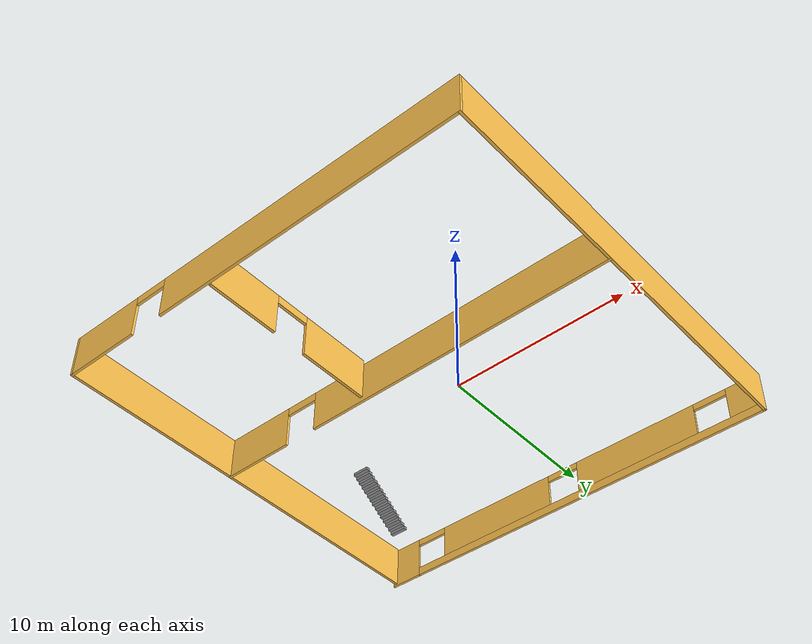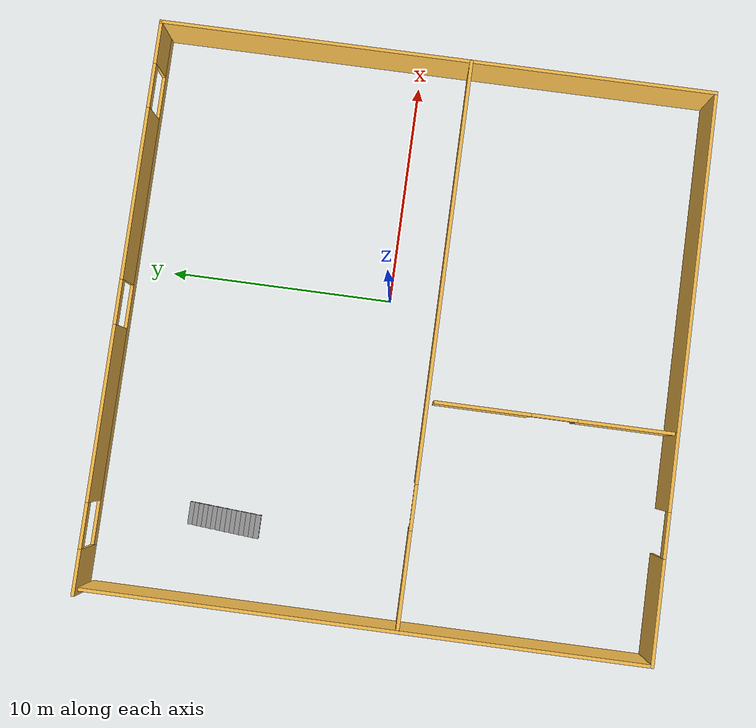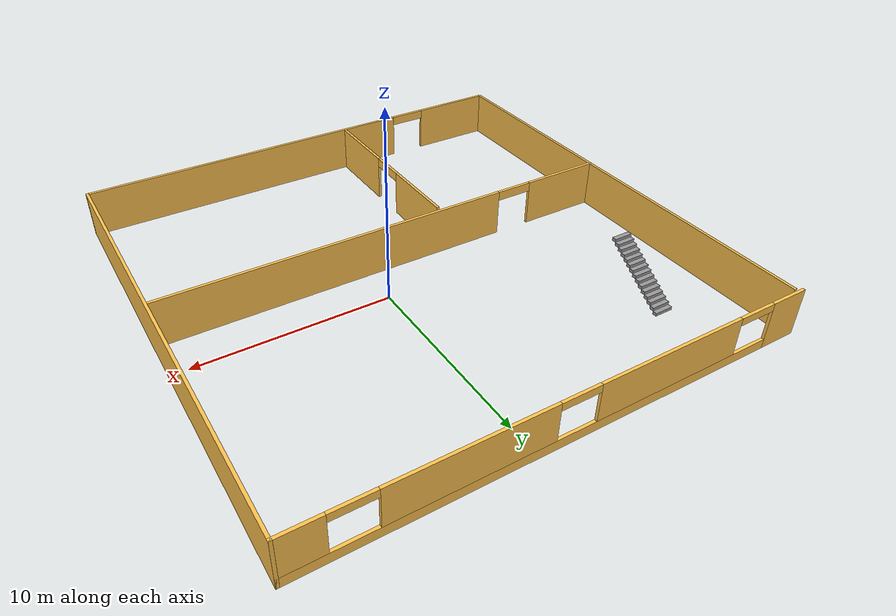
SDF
<?xml version='1.0'?>
<sdf version='1.6'>
  <model name='building'>
    <pose frame=''>-1.83631 -0.712175 0 0 -0 0</pose>
    <link name='Stairs_0'>
      <visual name='Stairs_0_Visual_0'>
        <pose frame=''>-8.80586 8.30072 0.083333 0 -0 0</pose>
        <geometry>
          <box>
            <size>1 0.233333 0.166667</size>
          </box>
        </geometry>
        <material>
          <script>
            <uri>file://media/materials/scripts/gazebo.material</uri>
            <name>Gazebo/Grey</name>
          </script>
          <ambient>1 1 1 1</ambient>
        </material>
        <meta>
          <layer>0</layer>
        </meta>
      </visual>
      <collision name='Stairs_0_Collision_0'>
        <geometry>
          <box>
            <size>1 0.233333 0.166667</size>
          </box>
        </geometry>
        <pose frame=''>-8.80586 8.30072 0.083333 0 -0 0</pose>
      </collision>
      <visual name='Stairs_0_Visual_1'>
        <pose frame=''>-8.80586 8.06739 0.25 0 -0 0</pose>
        <geometry>
          <box>
            <size>1 0.233333 0.166667</size>
          </box>
        </geometry>
        <material>
          <script>
            <uri>file://media/materials/scripts/gazebo.material</uri>
            <name>Gazebo/Grey</name>
          </script>
          <ambient>1 1 1 1</ambient>
        </material>
        <meta>
          <layer>0</layer>
        </meta>
      </visual>
      <collision name='Stairs_0_Collision_1'>
        <geometry>
          <box>
            <size>1 0.233333 0.166667</size>
          </box>
        </geometry>
        <pose frame=''>-8.80586 8.06739 0.25 0 -0 0</pose>
      </collision>
      <visual name='Stairs_0_Visual_2'>
        <pose frame=''>-8.80586 7.83406 0.416667 0 -0 0</pose>
        <geometry>
          <box>
            <size>1 0.233333 0.166667</size>
          </box>
        </geometry>
        <material>
          <script>
            <uri>file://media/materials/scripts/gazebo.material</uri>
            <name>Gazebo/Grey</name>
          </script>
          <ambient>1 1 1 1</ambient>
        </material>
        <meta>
          <layer>0</layer>
        </meta>
      </visual>
      <collision name='Stairs_0_Collision_2'>
        <geometry>
          <box>
            <size>1 0.233333 0.166667</size>
          </box>
        </geometry>
        <pose frame=''>-8.80586 7.83406 0.416667 0 -0 0</pose>
      </collision>
      <visual name='Stairs_0_Visual_3'>
        <pose frame=''>-8.80586 7.60072 0.583333 0 -0 0</pose>
        <geometry>
          <box>
            <size>1 0.233333 0.166667</size>
          </box>
        </geometry>
        <material>
          <script>
            <uri>file://media/materials/scripts/gazebo.material</uri>
            <name>Gazebo/Grey</name>
          </script>
          <ambient>1 1 1 1</ambient>
        </material>
        <meta>
          <layer>0</layer>
        </meta>
      </visual>
      <collision name='Stairs_0_Collision_3'>
        <geometry>
          <box>
            <size>1 0.233333 0.166667</size>
          </box>
        </geometry>
        <pose frame=''>-8.80586 7.60072 0.583333 0 -0 0</pose>
      </collision>
      <visual name='Stairs_0_Visual_4'>
        <pose frame=''>-8.80586 7.36739 0.75 0 -0 0</pose>
        <geometry>
          <box>
            <size>1 0.233333 0.166667</size>
          </box>
        </geometry>
        <material>
          <script>
            <uri>file://media/materials/scripts/gazebo.material</uri>
            <name>Gazebo/Grey</name>
          </script>
          <ambient>1 1 1 1</ambient>
        </material>
        <meta>
          <layer>0</layer>
        </meta>
      </visual>
      <collision name='Stairs_0_Collision_4'>
        <geometry>
          <box>
            <size>1 0.233333 0.166667</size>
          </box>
        </geometry>
        <pose frame=''>-8.80586 7.36739 0.75 0 -0 0</pose>
      </collision>
      <visual name='Stairs_0_Visual_5'>
        <pose frame=''>-8.80586 7.13406 0.916667 0 -0 0</pose>
        <geometry>
          <box>
            <size>1 0.233333 0.166667</size>
          </box>
        </geometry>
        <material>
          <script>
            <uri>file://media/materials/scripts/gazebo.material</uri>
            <name>Gazebo/Grey</name>
          </script>
          <ambient>1 1 1 1</ambient>
        </material>
        <meta>
          <layer>0</layer>
        </meta>
      </visual>
      <collision name='Stairs_0_Collision_5'>
        <geometry>
          <box>
            <size>1 0.233333 0.166667</size>
          </box>
        </geometry>
        <pose frame=''>-8.80586 7.13406 0.916667 0 -0 0</pose>
      </collision>
      <visual name='Stairs_0_Visual_6'>
        <pose frame=''>-8.80586 6.90072 1.08333 0 -0 0</pose>
        <geometry>
          <box>
            <size>1 0.233333 0.166667</size>
          </box>
        </geometry>
        <material>
          <script>
            <uri>file://media/materials/scripts/gazebo.material</uri>
            <name>Gazebo/Grey</name>
          </script>
          <ambient>1 1 1 1</ambient>
        </material>
        <meta>
          <layer>0</layer>
        </meta>
      </visual>
      <collision name='Stairs_0_Collision_6'>
        <geometry>
          <box>
            <size>1 0.233333 0.166667</size>
          </box>
        </geometry>
        <pose frame=''>-8.80586 6.90072 1.08333 0 -0 0</pose>
      </collision>
      <visual name='Stairs_0_Visual_7'>
        <pose frame=''>-8.80586 6.66739 1.25 0 -0 0</pose>
        <geometry>
          <box>
            <size>1 0.233333 0.166667</size>
          </box>
        </geometry>
        <material>
          <script>
            <uri>file://media/materials/scripts/gazebo.material</uri>
            <name>Gazebo/Grey</name>
          </script>
          <ambient>1 1 1 1</ambient>
        </material>
        <meta>
          <layer>0</layer>
        </meta>
      </visual>
      <collision name='Stairs_0_Collision_7'>
        <geometry>
          <box>
            <size>1 0.233333 0.166667</size>
          </box>
        </geometry>
        <pose frame=''>-8.80586 6.66739 1.25 0 -0 0</pose>
      </collision>
      <visual name='Stairs_0_Visual_8'>
        <pose frame=''>-8.80586 6.43406 1.41667 0 -0 0</pose>
        <geometry>
          <box>
            <size>1 0.233333 0.166667</size>
          </box>
        </geometry>
        <material>
          <script>
            <uri>file://media/materials/scripts/gazebo.material</uri>
            <name>Gazebo/Grey</name>
          </script>
          <ambient>1 1 1 1</ambient>
        </material>
        <meta>
          <layer>0</layer>
        </meta>
      </visual>
      <collision name='Stairs_0_Collision_8'>
        <geometry>
          <box>
            <size>1 0.233333 0.166667</size>
          </box>
        </geometry>
        <pose frame=''>-8.80586 6.43406 1.41667 0 -0 0</pose>
      </collision>
      <visual name='Stairs_0_Visual_9'>
        <pose frame=''>-8.80586 6.20072 1.58333 0 -0 0</pose>
        <geometry>
          <box>
            <size>1 0.233333 0.166667</size>
          </box>
        </geometry>
        <material>
          <script>
            <uri>file://media/materials/scripts/gazebo.material</uri>
            <name>Gazebo/Grey</name>
          </script>
          <ambient>1 1 1 1</ambient>
        </material>
        <meta>
          <layer>0</layer>
        </meta>
      </visual>
      <collision name='Stairs_0_Collision_9'>
        <geometry>
          <box>
            <size>1 0.233333 0.166667</size>
          </box>
        </geometry>
        <pose frame=''>-8.80586 6.20072 1.58333 0 -0 0</pose>
      </collision>
      <visual name='Stairs_0_Visual_10'>
        <pose frame=''>-8.80586 5.96739 1.75 0 -0 0</pose>
        <geometry>
          <box>
            <size>1 0.233333 0.166667</size>
          </box>
        </geometry>
        <material>
          <script>
            <uri>file://media/materials/scripts/gazebo.material</uri>
            <name>Gazebo/Grey</name>
          </script>
          <ambient>1 1 1 1</ambient>
        </material>
        <meta>
          <layer>0</layer>
        </meta>
      </visual>
      <collision name='Stairs_0_Collision_10'>
        <geometry>
          <box>
            <size>1 0.233333 0.166667</size>
          </box>
        </geometry>
        <pose frame=''>-8.80586 5.96739 1.75 0 -0 0</pose>
      </collision>
      <visual name='Stairs_0_Visual_11'>
        <pose frame=''>-8.80586 5.73406 1.91667 0 -0 0</pose>
        <geometry>
          <box>
            <size>1 0.233333 0.166667</size>
          </box>
        </geometry>
        <material>
          <script>
            <uri>file://media/materials/scripts/gazebo.material</uri>
            <name>Gazebo/Grey</name>
          </script>
          <ambient>1 1 1 1</ambient>
        </material>
        <meta>
          <layer>0</layer>
        </meta>
      </visual>
      <collision name='Stairs_0_Collision_11'>
        <geometry>
          <box>
            <size>1 0.233333 0.166667</size>
          </box>
        </geometry>
        <pose frame=''>-8.80586 5.73406 1.91667 0 -0 0</pose>
      </collision>
      <visual name='Stairs_0_Visual_12'>
        <pose frame=''>-8.80586 5.50072 2.08333 0 -0 0</pose>
        <geometry>
          <box>
            <size>1 0.233333 0.166667</size>
          </box>
        </geometry>
        <material>
          <script>
            <uri>file://media/materials/scripts/gazebo.material</uri>
            <name>Gazebo/Grey</name>
          </script>
          <ambient>1 1 1 1</ambient>
        </material>
        <meta>
          <layer>0</layer>
        </meta>
      </visual>
      <collision name='Stairs_0_Collision_12'>
        <geometry>
          <box>
            <size>1 0.233333 0.166667</size>
          </box>
        </geometry>
        <pose frame=''>-8.80586 5.50072 2.08333 0 -0 0</pose>
      </collision>
      <visual name='Stairs_0_Visual_13'>
        <pose frame=''>-8.80586 5.26739 2.25 0 -0 0</pose>
        <geometry>
          <box>
            <size>1 0.233333 0.166667</size>
          </box>
        </geometry>
        <material>
          <script>
            <uri>file://media/materials/scripts/gazebo.material</uri>
            <name>Gazebo/Grey</name>
          </script>
          <ambient>1 1 1 1</ambient>
        </material>
        <meta>
          <layer>0</layer>
        </meta>
      </visual>
      <collision name='Stairs_0_Collision_13'>
        <geometry>
          <box>
            <size>1 0.233333 0.166667</size>
          </box>
        </geometry>
        <pose frame=''>-8.80586 5.26739 2.25 0 -0 0</pose>
      </collision>
      <visual name='Stairs_0_Visual_14'>
        <pose frame=''>-8.80586 5.03406 2.41667 0 -0 0</pose>
        <geometry>
          <box>
            <size>1 0.233333 0.166667</size>
          </box>
        </geometry>
        <material>
          <script>
            <uri>file://media/materials/scripts/gazebo.material</uri>
            <name>Gazebo/Grey</name>
          </script>
          <ambient>1 1 1 1</ambient>
        </material>
        <meta>
          <layer>0</layer>
        </meta>
      </visual>
      <collision name='Stairs_0_Collision_14'>
        <geometry>
          <box>
            <size>1 0.233333 0.166667</size>
          </box>
        </geometry>
        <pose frame=''>-8.80586 5.03406 2.41667 0 -0 0</pose>
      </collision>
    </link>
    <link name='Wall_0'>
      <pose frame=''>-1e-06 12.425 0 0 -0 0</pose>
      <visual name='Wall_0_Visual_0'>
        <pose frame=''>-11.7466 0 1.25 0 -0 0</pose>
        <geometry>
          <box>
            <size>2.0068 0.15 2.5</size>
          </box>
        </geometry>
        <material>
          <script>
            <uri>file://media/materials/scripts/gazebo.material</uri>
            <name>Gazebo/Grey</name>
          </script>
          <ambient>1 0.764706 0.305882 1</ambient>
        </material>
        <meta>
          <layer>0</layer>
        </meta>
      </visual>
      <collision name='Wall_0_Collision_0'>
        <geometry>
          <box>
            <size>2.0068 0.15 2.5</size>
          </box>
        </geometry>
        <pose frame=''>-11.7466 0 1.25 0 -0 0</pose>
      </collision>
      <visual name='Wall_0_Visual_1'>
        <pose frame=''>1.0034 0 0.25 0 -0 0</pose>
        <geometry>
          <box>
            <size>23.4932 0.15 0.5</size>
          </box>
        </geometry>
        <material>
          <script>
            <uri>file://media/materials/scripts/gazebo.material</uri>
            <name>Gazebo/Grey</name>
          </script>
          <ambient>1 0.764706 0.305882 1</ambient>
        </material>
        <meta>
          <layer>0</layer>
        </meta>
      </visual>
      <collision name='Wall_0_Collision_1'>
        <geometry>
          <box>
            <size>23.4932 0.15 0.5</size>
          </box>
        </geometry>
        <pose frame=''>1.0034 0 0.25 0 -0 0</pose>
      </collision>
      <visual name='Wall_0_Visual_2'>
        <pose frame=''>-4.86655 0 1.5 0 -0 0</pose>
        <geometry>
          <box>
            <size>7.75331 0.15 2</size>
          </box>
        </geometry>
        <material>
          <script>
            <uri>file://media/materials/scripts/gazebo.material</uri>
            <name>Gazebo/Grey</name>
          </script>
          <ambient>1 0.764706 0.305882 1</ambient>
        </material>
        <meta>
          <layer>0</layer>
        </meta>
      </visual>
      <collision name='Wall_0_Collision_2'>
        <geometry>
          <box>
            <size>7.75331 0.15 2</size>
          </box>
        </geometry>
        <pose frame=''>-4.86655 0 1.5 0 -0 0</pose>
      </collision>
      <visual name='Wall_0_Visual_3'>
        <pose frame=''>4.87812 0 1.5 0 -0 0</pose>
        <geometry>
          <box>
            <size>7.73602 0.15 2</size>
          </box>
        </geometry>
        <material>
          <script>
            <uri>file://media/materials/scripts/gazebo.material</uri>
            <name>Gazebo/Grey</name>
          </script>
          <ambient>1 0.764706 0.305882 1</ambient>
        </material>
        <meta>
          <layer>0</layer>
        </meta>
      </visual>
      <collision name='Wall_0_Collision_3'>
        <geometry>
          <box>
            <size>7.73602 0.15 2</size>
          </box>
        </geometry>
        <pose frame=''>4.87812 0 1.5 0 -0 0</pose>
      </collision>
      <visual name='Wall_0_Visual_4'>
        <pose frame=''>11.7481 0 1.5 0 -0 0</pose>
        <geometry>
          <box>
            <size>2.00387 0.15 2</size>
          </box>
        </geometry>
        <material>
          <script>
            <uri>file://media/materials/scripts/gazebo.material</uri>
            <name>Gazebo/Grey</name>
          </script>
          <ambient>1 0.764706 0.305882 1</ambient>
        </material>
        <meta>
          <layer>0</layer>
        </meta>
      </visual>
      <collision name='Wall_0_Collision_4'>
        <geometry>
          <box>
            <size>2.00387 0.15 2</size>
          </box>
        </geometry>
        <pose frame=''>11.7481 0 1.5 0 -0 0</pose>
      </collision>
      <visual name='Wall_0_Visual_5'>
        <pose frame=''>-9.7432 0 2.3 0 -0 0</pose>
        <geometry>
          <box>
            <size>2 0.15 0.4</size>
          </box>
        </geometry>
        <material>
          <script>
            <uri>file://media/materials/scripts/gazebo.material</uri>
            <name>Gazebo/Grey</name>
          </script>
          <ambient>1 0.764706 0.305882 1</ambient>
        </material>
        <meta>
          <layer>0</layer>
        </meta>
      </visual>
      <collision name='Wall_0_Collision_5'>
        <geometry>
          <box>
            <size>2 0.15 0.4</size>
          </box>
        </geometry>
        <pose frame=''>-9.7432 0 2.3 0 -0 0</pose>
      </collision>
      <visual name='Wall_0_Visual_6'>
        <pose frame=''>0.01011 0 2.3 0 -0 0</pose>
        <geometry>
          <box>
            <size>2 0.15 0.4</size>
          </box>
        </geometry>
        <material>
          <script>
            <uri>file://media/materials/scripts/gazebo.material</uri>
            <name>Gazebo/Grey</name>
          </script>
          <ambient>1 0.764706 0.305882 1</ambient>
        </material>
        <meta>
          <layer>0</layer>
        </meta>
      </visual>
      <collision name='Wall_0_Collision_6'>
        <geometry>
          <box>
            <size>2 0.15 0.4</size>
          </box>
        </geometry>
        <pose frame=''>0.01011 0 2.3 0 -0 0</pose>
      </collision>
      <visual name='Wall_0_Visual_7'>
        <pose frame=''>9.74613 0 2.3 0 -0 0</pose>
        <geometry>
          <box>
            <size>2 0.15 0.4</size>
          </box>
        </geometry>
        <material>
          <script>
            <uri>file://media/materials/scripts/gazebo.material</uri>
            <name>Gazebo/Grey</name>
          </script>
          <ambient>1 0.764706 0.305882 1</ambient>
        </material>
        <meta>
          <layer>0</layer>
        </meta>
      </visual>
      <collision name='Wall_0_Collision_7'>
        <geometry>
          <box>
            <size>2 0.15 0.4</size>
          </box>
        </geometry>
        <pose frame=''>9.74613 0 2.3 0 -0 0</pose>
      </collision>
    </link>
    <link name='Wall_1'>
      <collision name='Wall_1_Collision'>
        <geometry>
          <box>
            <size>25 0.15 2.5</size>
          </box>
        </geometry>
        <pose frame=''>0 0 1.25 0 -0 0</pose>
      </collision>
      <visual name='Wall_1_Visual'>
        <pose frame=''>0 0 1.25 0 -0 0</pose>
        <geometry>
          <box>
            <size>25 0.15 2.5</size>
          </box>
        </geometry>
        <material>
          <script>
            <uri>file://media/materials/scripts/gazebo.material</uri>
            <name>Gazebo/Grey</name>
          </script>
          <ambient>1 0.764706 0.305882 1</ambient>
        </material>
        <meta>
          <layer>0</layer>
        </meta>
      </visual>
      <pose frame=''>12.675 0 0 0 0 -1.5708</pose>
    </link>
    <link name='Wall_2'>
      <pose frame=''>0.124999 -12.425 0 0 -0 3.14159</pose>
      <visual name='Wall_2_Visual_0'>
        <pose frame=''>-3.3109 0 1.25 0 -0 0</pose>
        <geometry>
          <box>
            <size>18.6282 0.15 2.5</size>
          </box>
        </geometry>
        <material>
          <script>
            <uri>file://media/materials/scripts/gazebo.material</uri>
            <name>Gazebo/Grey</name>
          </script>
          <ambient>1 0.764706 0.305882 1</ambient>
        </material>
        <meta>
          <layer>0</layer>
        </meta>
      </visual>
      <collision name='Wall_2_Collision_0'>
        <geometry>
          <box>
            <size>18.6282 0.15 2.5</size>
          </box>
        </geometry>
        <pose frame=''>-3.3109 0 1.25 0 -0 0</pose>
      </collision>
      <visual name='Wall_2_Visual_1'>
        <pose frame=''>10.3141 0 1.25 0 -0 0</pose>
        <geometry>
          <box>
            <size>4.62181 0.15 2.5</size>
          </box>
        </geometry>
        <material>
          <script>
            <uri>file://media/materials/scripts/gazebo.material</uri>
            <name>Gazebo/Grey</name>
          </script>
          <ambient>1 0.764706 0.305882 1</ambient>
        </material>
        <meta>
          <layer>0</layer>
        </meta>
      </visual>
      <collision name='Wall_2_Collision_1'>
        <geometry>
          <box>
            <size>4.62181 0.15 2.5</size>
          </box>
        </geometry>
        <pose frame=''>10.3141 0 1.25 0 -0 0</pose>
      </collision>
      <visual name='Wall_2_Visual_2'>
        <pose frame=''>7.00319 0 2.25 0 -0 0</pose>
        <geometry>
          <box>
            <size>2 0.15 0.5</size>
          </box>
        </geometry>
        <material>
          <script>
            <uri>file://media/materials/scripts/gazebo.material</uri>
            <name>Gazebo/Grey</name>
          </script>
          <ambient>1 0.764706 0.305882 1</ambient>
        </material>
        <meta>
          <layer>0</layer>
        </meta>
      </visual>
      <collision name='Wall_2_Collision_2'>
        <geometry>
          <box>
            <size>2 0.15 0.5</size>
          </box>
        </geometry>
        <pose frame=''>7.00319 0 2.25 0 -0 0</pose>
      </collision>
    </link>
    <link name='Wall_3'>
      <collision name='Wall_3_Collision'>
        <geometry>
          <box>
            <size>24.75 0.15 2.5</size>
          </box>
        </geometry>
        <pose frame=''>0 0 1.25 0 -0 0</pose>
      </collision>
      <visual name='Wall_3_Visual'>
        <pose frame=''>0 0 1.25 0 -0 0</pose>
        <geometry>
          <box>
            <size>24.75 0.15 2.5</size>
          </box>
        </geometry>
        <material>
          <script>
            <uri>file://media/materials/scripts/gazebo.material</uri>
            <name>Gazebo/Grey</name>
          </script>
          <ambient>1 0.764706 0.305882 1</ambient>
        </material>
        <meta>
          <layer>0</layer>
        </meta>
      </visual>
      <pose frame=''>-12.425 -0.125 0 0 -0 1.5708</pose>
    </link>
    <link name='Wall_5'>
      <pose frame=''>0.118339 -1.50622 0 0 -0 0</pose>
      <visual name='Wall_5_Visual_0'>
        <pose frame=''>-10.4316 0 1.25 0 -0 0</pose>
        <geometry>
          <box>
            <size>4.38678 0.15 2.5</size>
          </box>
        </geometry>
        <material>
          <script>
            <uri>file://media/materials/scripts/gazebo.material</uri>
            <name>Gazebo/Grey</name>
          </script>
          <ambient>1 0.764706 0.305882 1</ambient>
        </material>
        <meta>
          <layer>0</layer>
        </meta>
      </visual>
      <collision name='Wall_5_Collision_0'>
        <geometry>
          <box>
            <size>4.38678 0.15 2.5</size>
          </box>
        </geometry>
        <pose frame=''>-10.4316 0 1.25 0 -0 0</pose>
      </collision>
      <visual name='Wall_5_Visual_1'>
        <pose frame=''>3.19339 0 1.25 0 -0 0</pose>
        <geometry>
          <box>
            <size>18.8632 0.15 2.5</size>
          </box>
        </geometry>
        <material>
          <script>
            <uri>file://media/materials/scripts/gazebo.material</uri>
            <name>Gazebo/Grey</name>
          </script>
          <ambient>1 0.764706 0.305882 1</ambient>
        </material>
        <meta>
          <layer>0</layer>
        </meta>
      </visual>
      <collision name='Wall_5_Collision_1'>
        <geometry>
          <box>
            <size>18.8632 0.15 2.5</size>
          </box>
        </geometry>
        <pose frame=''>3.19339 0 1.25 0 -0 0</pose>
      </collision>
      <visual name='Wall_5_Visual_2'>
        <pose frame=''>-7.23822 0 2.25 0 -0 0</pose>
        <geometry>
          <box>
            <size>2 0.15 0.5</size>
          </box>
        </geometry>
        <material>
          <script>
            <uri>file://media/materials/scripts/gazebo.material</uri>
            <name>Gazebo/Grey</name>
          </script>
          <ambient>1 0.764706 0.305882 1</ambient>
        </material>
        <meta>
          <layer>0</layer>
        </meta>
      </visual>
      <collision name='Wall_5_Collision_2'>
        <geometry>
          <box>
            <size>2 0.15 0.5</size>
          </box>
        </geometry>
        <pose frame=''>-7.23822 0 2.25 0 -0 0</pose>
      </collision>
    </link>
    <link name='Wall_7'>
      <pose frame=''>-2.51556 -7.04622 0 0 0 -1.5708</pose>
      <visual name='Wall_7_Visual_0'>
        <pose frame=''>-3.12066 0 1.25 0 -0 0</pose>
        <geometry>
          <box>
            <size>4.25868 0.15 2.5</size>
          </box>
        </geometry>
        <material>
          <script>
            <uri>file://media/materials/scripts/gazebo.material</uri>
            <name>Gazebo/Grey</name>
          </script>
          <ambient>1 0.764706 0.305882 1</ambient>
        </material>
        <meta>
          <layer>0</layer>
        </meta>
      </visual>
      <collision name='Wall_7_Collision_0'>
        <geometry>
          <box>
            <size>4.25868 0.15 2.5</size>
          </box>
        </geometry>
        <pose frame=''>-3.12066 0 1.25 0 -0 0</pose>
      </collision>
      <visual name='Wall_7_Visual_1'>
        <pose frame=''>3.12934 0 1.25 0 -0 0</pose>
        <geometry>
          <box>
            <size>4.24132 0.15 2.5</size>
          </box>
        </geometry>
        <material>
          <script>
            <uri>file://media/materials/scripts/gazebo.material</uri>
            <name>Gazebo/Grey</name>
          </script>
          <ambient>1 0.764706 0.305882 1</ambient>
        </material>
        <meta>
          <layer>0</layer>
        </meta>
      </visual>
      <collision name='Wall_7_Collision_1'>
        <geometry>
          <box>
            <size>4.24132 0.15 2.5</size>
          </box>
        </geometry>
        <pose frame=''>3.12934 0 1.25 0 -0 0</pose>
      </collision>
      <visual name='Wall_7_Visual_2'>
        <pose frame=''>0.008684 0 2.25 0 -0 0</pose>
        <geometry>
          <box>
            <size>2 0.15 0.5</size>
          </box>
        </geometry>
        <material>
          <script>
            <uri>file://media/materials/scripts/gazebo.material</uri>
            <name>Gazebo/Grey</name>
          </script>
          <ambient>1 0.764706 0.305882 1</ambient>
        </material>
        <meta>
          <layer>0</layer>
        </meta>
      </visual>
      <collision name='Wall_7_Collision_2'>
        <geometry>
          <box>
            <size>2 0.15 0.5</size>
          </box>
        </geometry>
        <pose frame=''>0.008684 0 2.25 0 -0 0</pose>
      </collision>
    </link>
    <static>1</static>
  </model>
</sdf>
